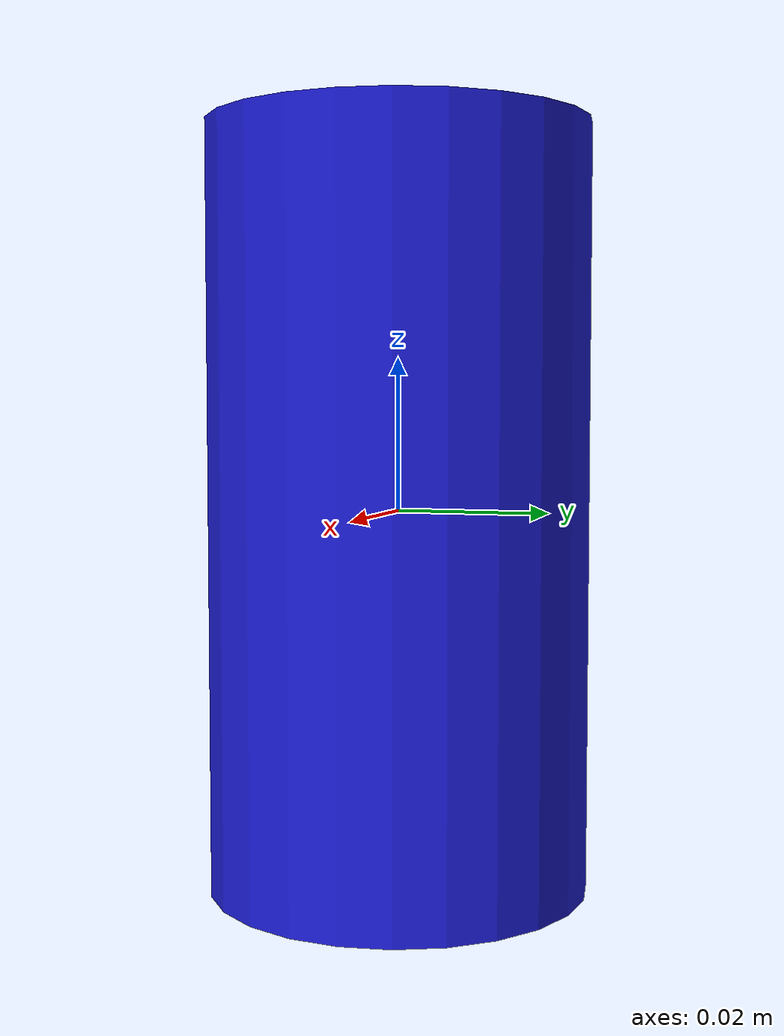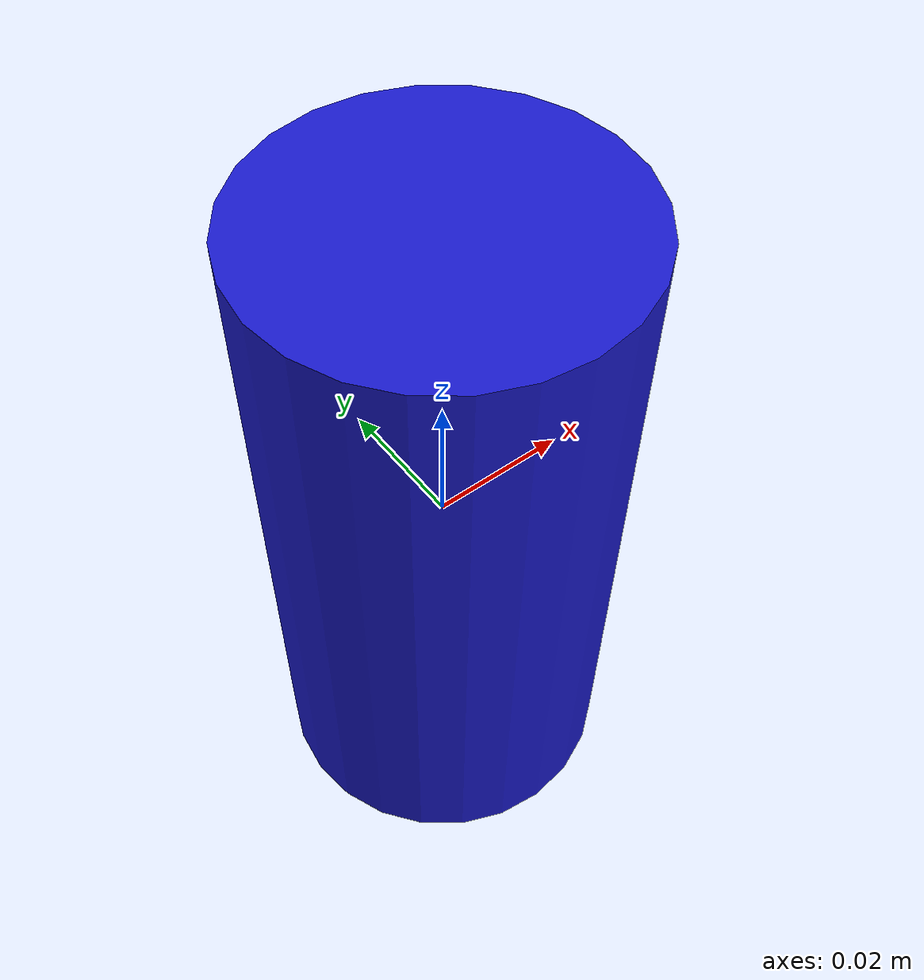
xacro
<?xml version="1.0"?>

<robot xmlns:xacro="http://ros.org/wiki/xacro" name="cylinder">

  <!-- ==================== PARAMETERS ==================== -->

  <!-- Object name - used for link names and Gazebo plugin -->
  <xacro:arg name="name" default="cylinder"/>

  <!-- Cylinder dimensions (meters) -->
  <xacro:arg name="radius" default="0.025"/>
  <xacro:arg name="length" default="0.1"/>

  <!-- Mass (kg) -->
  <xacro:arg name="mass" default="0.1"/>

  <!-- Color selection -->
  <xacro:arg name="color" default="blue"/>

  <!-- ==================== COMPUTED PROPERTIES ==================== -->

  <xacro:property name="obj_name" value="$(arg name)"/>
  <xacro:property name="obj_radius" value="$(arg radius)"/>
  <xacro:property name="obj_length" value="$(arg length)"/>
  <xacro:property name="obj_mass" value="$(arg mass)"/>
  <xacro:property name="obj_color" value="$(arg color)"/>

  <!-- Inertia for a solid cylinder (axis along Z): -->
  <!-- Ixx = Iyy = (1/12) * m * (3*r^2 + h^2) -->
  <!-- Izz = (1/2) * m * r^2 -->
  <xacro:property name="inertia_xx" value="${(1.0/12.0) * obj_mass * (3.0 * obj_radius * obj_radius + obj_length * obj_length)}"/>
  <xacro:property name="inertia_zz" value="${(1.0/2.0) * obj_mass * obj_radius * obj_radius}"/>

  <!-- ==================== COLOR MATERIALS ==================== -->

  <material name="red">
    <color rgba="0.8 0.1 0.1 1.0"/>
  </material>

  <material name="green">
    <color rgba="0.1 0.8 0.1 1.0"/>
  </material>

  <material name="blue">
    <color rgba="0.1 0.1 0.8 1.0"/>
  </material>

  <material name="yellow">
    <color rgba="0.9 0.9 0.1 1.0"/>
  </material>

  <material name="orange">
    <color rgba="1.0 0.5 0.0 1.0"/>
  </material>

  <material name="purple">
    <color rgba="0.6 0.1 0.8 1.0"/>
  </material>

  <material name="white">
    <color rgba="0.95 0.95 0.95 1.0"/>
  </material>

  <material name="black">
    <color rgba="0.1 0.1 0.1 1.0"/>
  </material>

  <material name="grey">
    <color rgba="0.5 0.5 0.5 1.0"/>
  </material>

  <!-- ==================== LINK DEFINITION ==================== -->

  <link name="${obj_name}">

    <!-- Visual geometry -->
    <visual>
      <origin xyz="0 0 0" rpy="0 0 0"/>
      <geometry>
        <cylinder radius="${obj_radius}" length="${obj_length}"/>
      </geometry>
      <material name="${obj_color}"/>
    </visual>

    <!-- Collision geometry -->
    <collision>
      <origin xyz="0 0 0" rpy="0 0 0"/>
      <geometry>
        <cylinder radius="${obj_radius}" length="${obj_length}"/>
      </geometry>
    </collision>

    <!-- Inertial properties -->
    <inertial>
      <origin xyz="0 0 0" rpy="0 0 0"/>
      <mass value="${obj_mass}"/>
      <inertia
        ixx="${inertia_xx}" ixy="0.0" ixz="0.0"
        iyy="${inertia_xx}" iyz="0.0"
        izz="${inertia_zz}"/>
    </inertial>

  </link>

  <!-- ==================== GAZEBO PROPERTIES ==================== -->

  <!-- Gazebo material colors -->
  <xacro:if value="${obj_color == 'red'}">
    <gazebo reference="${obj_name}">
      <material>Gazebo/Red</material>
    </gazebo>
  </xacro:if>

  <xacro:if value="${obj_color == 'green'}">
    <gazebo reference="${obj_name}">
      <material>Gazebo/Green</material>
    </gazebo>
  </xacro:if>

  <xacro:if value="${obj_color == 'blue'}">
    <gazebo reference="${obj_name}">
      <material>Gazebo/Blue</material>
    </gazebo>
  </xacro:if>

  <xacro:if value="${obj_color == 'yellow'}">
    <gazebo reference="${obj_name}">
      <material>Gazebo/Yellow</material>
    </gazebo>
  </xacro:if>

  <xacro:if value="${obj_color == 'orange'}">
    <gazebo reference="${obj_name}">
      <material>Gazebo/Orange</material>
    </gazebo>
  </xacro:if>

  <xacro:if value="${obj_color == 'purple'}">
    <gazebo reference="${obj_name}">
      <material>Gazebo/Purple</material>
    </gazebo>
  </xacro:if>

  <xacro:if value="${obj_color == 'white'}">
    <gazebo reference="${obj_name}">
      <material>Gazebo/White</material>
    </gazebo>
  </xacro:if>

  <xacro:if value="${obj_color == 'black'}">
    <gazebo reference="${obj_name}">
      <material>Gazebo/Black</material>
    </gazebo>
  </xacro:if>

  <xacro:if value="${obj_color == 'grey'}">
    <gazebo reference="${obj_name}">
      <material>Gazebo/Grey</material>
    </gazebo>
  </xacro:if>

  <!-- Gazebo physics properties -->
  <gazebo reference="${obj_name}">
    <mu1>0.8</mu1>
    <mu2>0.8</mu2>
    <kp>1000000.0</kp>
    <kd>100.0</kd>
    <minDepth>0.001</minDepth>
    <maxVel>1.0</maxVel>
    <selfCollide>false</selfCollide>
  </gazebo>

  <!-- ==================== GAZEBO PLUGINS ==================== -->

  <!-- Ground truth pose publisher -->
  <gazebo>
    <plugin name="p3d_${obj_name}" filename="libgazebo_ros_p3d.so">
      <ros>
        <namespace>/</namespace>
        <remapping>odom:=object_poses/${obj_name}</remapping>
      </ros>
      <body_name>${obj_name}</body_name>
      <frame_name>world</frame_name>
      <update_rate>30.0</update_rate>
      <xyz_offset>0 0 0</xyz_offset>
      <rpy_offset>0 0 0</rpy_offset>
      <gaussian_noise>0.0</gaussian_noise>
    </plugin>
  </gazebo>

</robot>
